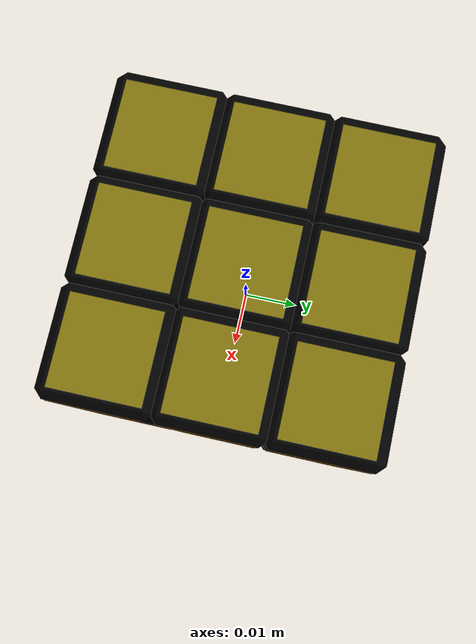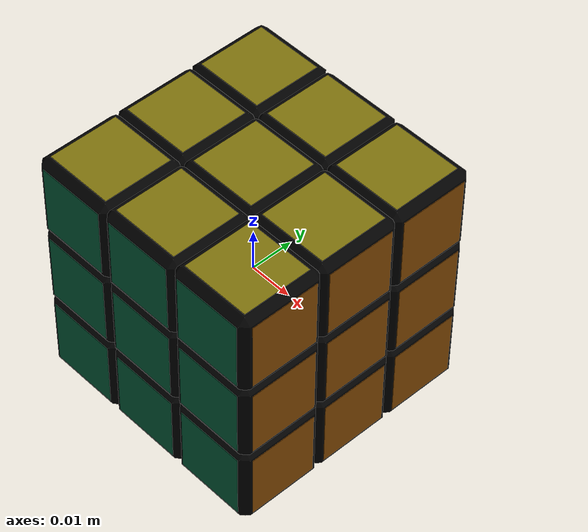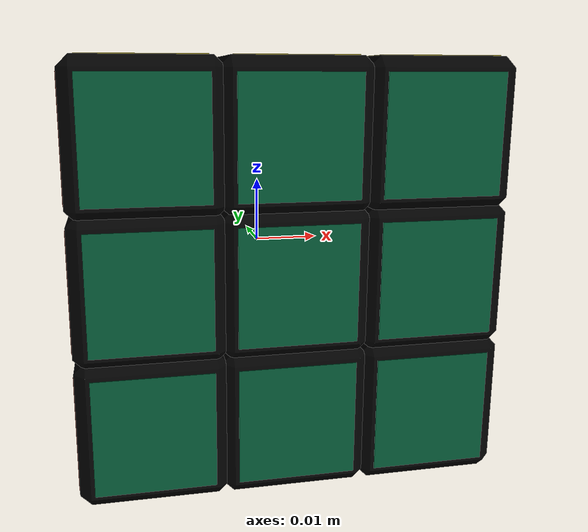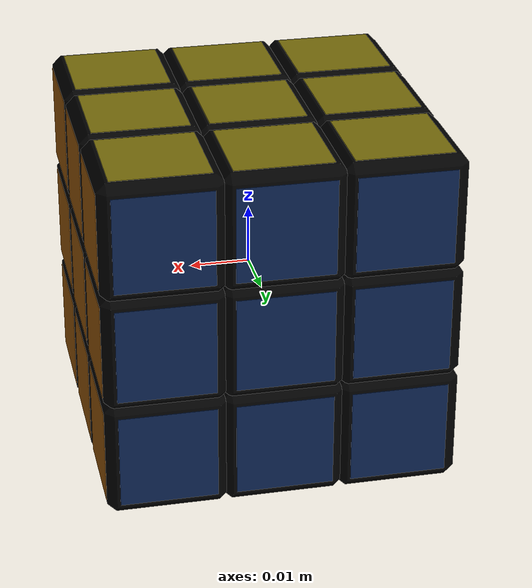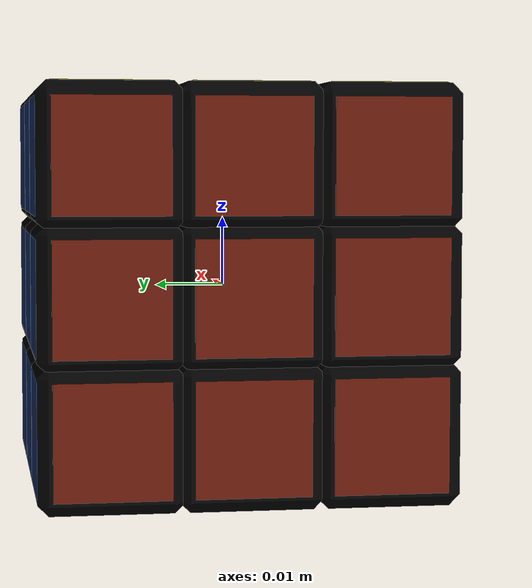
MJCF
<mujoco>
    <default>
        <default class="cube">
            <!-- ===== Defaults for small cubelet joints ===== -->

            <!-- ===== Defaults for the cubelet/driver hinge joints ==== -->
            <!-- Original joint damping/friction very likely to be too strong as we just have many more joints  -->
            <!-- Setting similar to the original bur probably still to strong:  -->

            <joint damping='0.0005' armature='0.0001' frictionloss="0.0005"/>

            <!-- ===== Defaults for small cubelet geoms ===== -->
            <!-- Original geom friction settings -->
            <!-- Current settings, making a friction closer to the half of original frictions -->
            <geom condim="6" density="521" friction="0.2 0.0025 0.0005"/>
        </default>

        <default class="cubemain">
            <joint damping='0.0' armature='0.0' frictionloss="0"/>
        </default>

        <default class="slide">
            <!-- These joints need "strong" armature to make high stiffness stable -->
            <joint stiffness="500.0" springref="0" armature="0.01" ref="0" damping="0.005" frictionloss="0.005" limited="true" range="-0.001 0.0002"/>
        </default>

        <default class="cubelet">
            <geom type="mesh" mesh="rounded_cube" material="cubelet_material" size="0.01 0.01 0.01" rgba="0 0 0 1" />
        </default>

        <default class="sticker">
            <geom type="box" conaffinity="0" contype="0" />
        </default>
    </default>

    <!-- Asset part -->
    <asset>
        <material name="cubelet_material" specular="1" shininess=".3" rgba="0 0 0 1" />
        <mesh name="rounded_cube" file="rounded_cubelet.stl" />
        <!-- sticker -->
        <material name="sticker_R" specular=".3" shininess="0.3" rgba="0.3843137254901961 0.09411764705882353 0.03529411764705882 1" />
        <material name="sticker_O" specular=".3" shininess="0.3" rgba="0.5137254901960784 0.2823529411764706 0.01568627450980392 1" />
        <material name="sticker_Y" specular=".3" shininess="0.3" rgba="0.5019607843137255 0.4549019607843137 0.050980392156862744 1" />
        <material name="sticker_W" specular=".3" shininess="0.3" rgba="0.596078431372549 0.6196078431372549 0.5607843137254902 1" />
        <material name="sticker_G" specular=".3" shininess="0.3" rgba="0.00784313725490196 0.3137254901960784 0.19215686274509805 1" />
        <material name="sticker_B" specular=".3" shininess="0.3" rgba="0.043137254901960784 0.13333333333333333 0.30980392156862746 1" />
    </asset>

    <worldbody>
        <body name="middle" childclass="cube" pos="0 0 0">
            <joint name="cube:tx"  class="cubemain" type="slide" axis="1 0 0" limited="false"/>
            <joint name="cube:ty"  class="cubemain" type="slide" axis="0 1 0" limited="false"/>
            <joint name="cube:tz"  class="cubemain" type="slide" axis="0 0 1" limited="false"/>
            <joint name="cube:rot" class="cubemain" type="ball" limited="false"/>

            <site name="center" pos="0 0 0" rgba="1 0 0 1" size="0.01 0.01 0.01" />
            <geom  name="center_sphere" pos="0.00 0.00 0.00" type="sphere" size="0.01 0.01 0.01" rgba="0.5 0.5 0.5 1.0"/>

            <!-- 6 cubelets adjacent to center -->

            <body name="body:neg_x">
                <body name="cubelet:neg_x" pos="-0.01905 0 0">
                    <!-- Red -->
                    <geom name="cubelet:neg_x" class="cubelet" />
                    <geom name="sticker:neg_x" class="sticker" material="sticker_R" size="0.0001 0.008 0.008" pos="-0.01 0.0 0.0"  />
                </body>

                <joint name="cubelet:driver:neg_x" type="hinge" pos="0 0 0" axis="1 0 0"/>
            </body>

            <body name="body:pos_x">
                <body name="cubelet:pos_x" pos="0.01905 0.00 0.00">
                    <!-- Orange -->
                    <geom name="cubelet:pos_x" class="cubelet" />
                    <geom name="sticker:pos_x" class="sticker" material="sticker_O" size="0.0001 0.008 0.008" pos="0.01 0.0 0.0" />
                </body>

                <joint name="cubelet:driver:pos_x" type="hinge" pos="0 0 0" axis="1 0 0"/>
            </body>

            <body name="body:neg_y">
                <body name="cubelet:neg_y" pos="0.00 -0.01905 0.00">
                    <!-- Green -->
                    <geom name="cubelet:neg_y" class="cubelet" />
                    <geom name="sticker:neg_y" class="sticker" material="sticker_G" size="0.008 0.0001 0.008" pos="0.0 -0.01 0.0" />
                </body>
                <joint name="cubelet:driver:neg_y" type="hinge" pos="0 0 0" axis="0 1 0"/>
            </body>

            <body name="body:pos_y">
                    <!-- Blue -->
                <body name="cubelet:pos_y" pos="0.00 0.01905 0.00">
                    <geom name="cubelet:pos_y" class="cubelet" />
                    <geom name="sticker:pos_y" class="sticker" material="sticker_B" size="0.008 0.0001 0.008" pos="0.0 0.01 0.0" />
                </body>

                <joint name="cubelet:driver:pos_y" type="hinge" pos="0 0 0" axis="0 1 0"/>
            </body>

            <body name="body:neg_z">
                <body name="cubelet:neg_z" pos="0.0 0.0 -0.01905">
                    <!-- White -->
                    <geom name="cubelet:neg_z" class="cubelet" />
                    <geom name="sticker:neg_z" class="sticker" material="sticker_W" size="0.008 0.008 0.0001" pos="0.0 0.0 -0.01" />
                </body>

                <joint name="cubelet:driver:neg_z" type="hinge" pos="0 0 0" axis="0 0 1"/>
            </body>

            <body name="body:pos_z">
                <body name="cubelet:pos_z" pos="0.00 0.00 0.01905">
                    <!-- Yellow -->
                    <geom name="cubelet:pos_z" class="cubelet" />
                    <geom name="sticker:pos_z" class="sticker" material="sticker_Y" size="0.008 0.008 0.0001" pos="0.0 0.0 0.01" />
                </body>

                <joint name="cubelet:driver:pos_z" type="hinge" pos="0 0 0" axis="0 0 1"/>
            </body>

            <!-- 20 "moveable" cubelets -->
            <body name="body:neg_x_pos_y">
                <body name="cubelet:neg_x_pos_y" pos="-0.01905 0.01905 0.0">
                    <!-- Red/Blue -->
                    <geom name="cubelet:neg_x_pos_y" class="cubelet" />
                    <geom name="sticker:neg_x_pos_y_R" class="sticker" material="sticker_R" size="0.0001 0.008 0.008" pos="-0.01 0.0 0.0" />
                    <geom name="sticker:neg_x_pos_y_B" class="sticker" material="sticker_B" size="0.008 0.0001 0.008" pos="0.0 0.01 0.0" />
                </body>

                <joint name="cubelet:rotx:neg_x_pos_y"   type="hinge" pos="0 0 0" axis="1 0 0"/>
                <joint name="cubelet:roty:neg_x_pos_y"   type="hinge" pos="0 0 0" axis="0 1 0"/>
                <joint name="cubelet:rotz:neg_x_pos_y"   type="hinge" pos="0 0 0" axis="0 0 1"/>
                <joint name="cubelet:spring:neg_x_pos_y" type="slide" pos="0 0 0" axis="-1 1 0" class="slide"/>
            </body>

            <body name="body:neg_x_pos_y_pos_z">
                <!-- Red/Blue/Yellow -->
                <body name="cubelet:neg_x_pos_y_pos_z"  pos="-0.01905 0.01905 0.01905">
                    <geom name="cubelet:neg_x_pos_y_pos_z" class="cubelet" />
                    <geom name="sticker:neg_x_pos_y_pos_z_R" class="sticker" material="sticker_R" size="0.0001 0.008 0.008" pos="-0.01 0.0 0.0" />
                    <geom name="sticker:neg_x_pos_y_pos_z_B" class="sticker" material="sticker_B" size="0.008 0.0001 0.008" pos="0.0 0.01 0.0" />
                    <geom name="sticker:neg_x_pos_y_pos_z_Y" class="sticker" material="sticker_Y" size="0.008 0.008 0.0001" pos="0.0 0.0 0.01" />
                </body>
                <joint name="cubelet:rotx:neg_x_pos_y_pos_z"   type="hinge" pos="0 0 0" axis="1 0 0"/>
                <joint name="cubelet:roty:neg_x_pos_y_pos_z"   type="hinge" pos="0 0 0" axis="0 1 0"/>
                <joint name="cubelet:rotz:neg_x_pos_y_pos_z"   type="hinge" pos="0 0 0" axis="0 0 1"/>
                <joint name="cubelet:spring:neg_x_pos_y_pos_z" type="slide" pos="0 0 0" axis="-1 1 1" class="slide"/>
            </body>

            <body name="body:neg_x_pos_y_neg_z">
                <!-- Red/Blue/White -->
                <body name="cubelet:neg_x_pos_y_neg_z" pos="-0.01905 0.01905 -0.01905">
                    <geom name="cubelet:neg_x_pos_y_neg_z" class="cubelet" />
                    <geom name="sticker:neg_x_pos_y_neg_z_R" class="sticker" material="sticker_R" size="0.0001 0.008 0.008" pos="-0.01 0.0 0.0" />
                    <geom name="sticker:neg_x_pos_y_neg_z_B" class="sticker" material="sticker_B" size="0.008 0.0001 0.008" pos="0.0 0.01 0.0" />
                    <geom name="sticker:neg_x_pos_y_neg_z_W" class="sticker" material="sticker_W" size="0.008 0.008 0.0001" pos="0.0 0.0 -0.01" />
                </body>

                <joint name="cubelet:rotx:neg_x_pos_y_neg_z"   type="hinge" pos="0 0 0" axis="1 0 0"/>
                <joint name="cubelet:roty:neg_x_pos_y_neg_z"   type="hinge" pos="0 0 0" axis="0 1 0"/>
                <joint name="cubelet:rotz:neg_x_pos_y_neg_z"   type="hinge" pos="0 0 0" axis="0 0 1"/>
                <joint name="cubelet:spring:neg_x_pos_y_neg_z" type="slide" pos="0 0 0" axis="-1 1 -1" class="slide"/>
            </body>

            <body name="body:neg_x_neg_y_pos_z" >
                <!-- Red/Green/Yellow -->
                <body name="cubelet:neg_x_neg_y_pos_z" pos="-0.01905 -0.01905 0.01905">
                    <geom name="cubelet:neg_x_neg_y_pos_z" class="cubelet" />
                    <geom name="sticker:neg_x_neg_y_pos_z_R" class="sticker" material="sticker_R" size="0.0001 0.008 0.008" pos="-0.01 0.0 0.0" />
                    <geom name="sticker:neg_x_neg_y_pos_z_G" class="sticker" material="sticker_G" size="0.008 0.0001 0.008" pos="0.0 -0.01 0.0" />
                    <geom name="sticker:neg_x_neg_y_pos_z_Y" class="sticker" material="sticker_Y" size="0.008 0.008 0.0001" pos="0.0 0.0 0.01" />
                </body>

                <joint name="cubelet:rotx:neg_x_neg_y_pos_z"   type="hinge" pos="0 0 0" axis="1 0 0"/>
                <joint name="cubelet:roty:neg_x_neg_y_pos_z"   type="hinge" pos="0 0 0" axis="0 1 0"/>
                <joint name="cubelet:rotz:neg_x_neg_y_pos_z"   type="hinge" pos="0 0 0" axis="0 0 1"/>
                <joint name="cubelet:spring:neg_x_neg_y_pos_z" type="slide" pos="0 0 0" axis="-1 -1 1" class="slide"/>
            </body>

            <body name="body:neg_x_neg_y_neg_z">
                <!-- Red/Green/White -->
                <body name="cubelet:neg_x_neg_y_neg_z" pos="-0.01905 -0.01905 -0.01905">
                    <geom name="cubelet:neg_x_neg_y_neg_z" class="cubelet"/>
                    <geom name="sticker:neg_x_neg_y_neg_z_R" class="sticker" material="sticker_R" size="0.0001 0.008 0.008" pos="-0.01 0.0 0.0" />
                    <geom name="sticker:neg_x_neg_y_neg_z_G" class="sticker" material="sticker_G" size="0.008 0.0001 0.008" pos="0.0 -0.01 0.0" />
                    <geom name="sticker:neg_x_neg_y_neg_z_W" class="sticker" material="sticker_W" size="0.008 0.008 0.0001" pos="0.0 0.0 -0.01" />
                </body>

                <joint name="cubelet:rotx:neg_x_neg_y_neg_z"   type="hinge" pos="0 0 0" axis="1 0 0"/>
                <joint name="cubelet:roty:neg_x_neg_y_neg_z"   type="hinge" pos="0 0 0" axis="0 1 0"/>
                <joint name="cubelet:rotz:neg_x_neg_y_neg_z"   type="hinge" pos="0 0 0" axis="0 0 1"/>
                <joint name="cubelet:spring:neg_x_neg_y_neg_z" type="slide" pos="0 0 0" axis="-1 -1 -1" class="slide"/>
            </body>

            <body name="body:neg_x_neg_z">
                <!-- Red/White -->
                <body name="cubelet:neg_x_neg_z" pos="-0.01905 0.0 -0.01905">
                    <geom name="cubelet:neg_x_neg_z" class="cubelet" />
                    <geom name="sticker:neg_x_neg_z_R" class="sticker" material="sticker_R" size="0.0001 0.008 0.008" pos="-0.01 0.0 0.0" />
                    <geom name="sticker:neg_x_neg_z_W" class="sticker" material="sticker_W" size="0.008 0.008 0.0001" pos="0.0 0.0 -0.01" />
                </body>

                <joint name="cubelet:rotx:neg_x_neg_z"   type="hinge" pos="0 0 0" axis="1 0 0"/>
                <joint name="cubelet:roty:neg_x_neg_z"   type="hinge" pos="0 0 0" axis="0 1 0"/>
                <joint name="cubelet:rotz:neg_x_neg_z"   type="hinge" pos="0 0 0" axis="0 0 1"/>
                <joint name="cubelet:spring:neg_x_neg_z" type="slide" pos="0 0 0" axis="-1 0 -1" class="slide"/>
            </body>

            <body name="body:neg_x_neg_y">
                <!-- Red/Green -->
                <body name="cubelet:neg_x_neg_y" pos="-0.01905 -0.01905 0.0">
                    <geom name="cubelet:neg_x_neg_y" class="cubelet" />
                    <geom name="sticker:neg_x_neg_y_R" class="sticker" material="sticker_R" size="0.0001 0.008 0.008" pos="-0.01 0.0 0.0" />
                    <geom name="sticker:neg_x_neg_y_G" class="sticker" material="sticker_G" size="0.008 0.0001 0.008" pos="0.0 -0.01 0.0" />
                </body>

                <joint name="cubelet:rotx:neg_x_neg_y"   type="hinge" pos="0 0 0" axis="1 0 0"/>
                <joint name="cubelet:roty:neg_x_neg_y"   type="hinge" pos="0 0 0" axis="0 1 0"/>
                <joint name="cubelet:rotz:neg_x_neg_y"   type="hinge" pos="0 0 0" axis="0 0 1"/>
                <joint name="cubelet:spring:neg_x_neg_y" type="slide" pos="0 0 0" axis="-1 -1 0" class="slide"/>
            </body>

            <body name="body:neg_x_pos_z">
                <!-- Red/Yellow -->
                <body name="cubelet:neg_x_pos_z" pos="-0.01905 0.0 0.01905">
                    <geom name="cubelet:neg_x_pos_z" class="cubelet" />
                    <geom name="sticker:neg_x_pos_z_R" class="sticker" material="sticker_R" size="0.0001 0.008 0.008" pos="-0.01 0.0 0.0" />
                    <geom name="sticker:neg_x_pos_z_Y" class="sticker" material="sticker_Y" size="0.008 0.008 0.0001" pos="0.0 0.0 0.01" />
                </body>

                <joint name="cubelet:rotx:neg_x_pos_z"   type="hinge" pos="0 0 0" axis="1 0 0"/>
                <joint name="cubelet:roty:neg_x_pos_z"   type="hinge" pos="0 0 0" axis="0 1 0"/>
                <joint name="cubelet:rotz:neg_x_pos_z"   type="hinge" pos="0 0 0" axis="0 0 1"/>
                <joint name="cubelet:spring:neg_x_pos_z" type="slide" pos="0 0 0" axis="-1 0 1" class="slide"/>
            </body>

            <body name="body:pos_x_neg_z">
                <!-- Orange/White -->
                <body name="cubelet:pos_x_neg_z" pos="0.01905 0.0 -0.01905">
                    <geom name="cubelet:pos_x_neg_z" class="cubelet" />
                    <geom name="sticker:pos_x_neg_z_O" class="sticker" material="sticker_O" size="0.0001 0.008 0.008" pos="0.01 0.0 0.0" />
                    <geom name="sticker:pos_x_neg_z_W" class="sticker" material="sticker_W" size="0.008 0.008 0.0001" pos="0.0 0.0 -0.01" />
                </body>

                <joint name="cubelet:rotx:pos_x_neg_z"   type="hinge" pos="0 0 0" axis="1 0 0"/>
                <joint name="cubelet:roty:pos_x_neg_z"   type="hinge" pos="0 0 0" axis="0 1 0"/>
                <joint name="cubelet:rotz:pos_x_neg_z"   type="hinge" pos="0 0 0" axis="0 0 1"/>
                <joint name="cubelet:spring:pos_x_neg_z" type="slide" pos="0 0 0" axis="1 0 -1" class="slide"/>
            </body>

            <body name="body:pos_x_pos_z">
                <!-- Orange/Yellow -->
                <body name="cubelet:pos_x_pos_z" pos="0.01905 0.0 0.01905">
                    <geom name="cubelet:pos_x_pos_z" class="cubelet" />
                    <geom name="sticker:pos_x_pos_z_O" class="sticker" material="sticker_O" size="0.0001 0.008 0.008" pos="0.01 0.0 0.0" />
                    <geom name="sticker:pos_x_pos_z_Y" class="sticker" material="sticker_Y" size="0.008 0.008 0.0001" pos="0.0 0.0 0.01" />
                </body>

                <joint name="cubelet:rotx:pos_x_pos_z"   type="hinge" pos="0 0 0" axis="1 0 0"/>
                <joint name="cubelet:roty:pos_x_pos_z"   type="hinge" pos="0 0 0" axis="0 1 0"/>
                <joint name="cubelet:rotz:pos_x_pos_z"   type="hinge" pos="0 0 0" axis="0 0 1"/>
                <joint name="cubelet:spring:pos_x_pos_z" type="slide" pos="0 0 0" axis="1 0 1" class="slide"/>
            </body>

            <body name="body:pos_x_pos_y">
                <!-- Orange/Blue -->
                <body name="cubelet:pos_x_pos_y" pos="0.01905 0.01905 0.0">
                    <geom name="cubelet:pos_x_pos_y" class="cubelet" />
                    <geom name="sticker:pos_x_pos_y_O" class="sticker" material="sticker_O" size="0.0001 0.008 0.008" pos="0.01 0.0 0.0" />
                    <geom name="sticker:pos_x_pos_y_B" class="sticker" material="sticker_B" size="0.008 0.0001 0.008" pos="0.0 0.01 0.0" />
                </body>

                <joint name="cubelet:rotx:pos_x_pos_y"   type="hinge" pos="0 0 0" axis="1 0 0"/>
                <joint name="cubelet:roty:pos_x_pos_y"   type="hinge" pos="0 0 0" axis="0 1 0"/>
                <joint name="cubelet:rotz:pos_x_pos_y"   type="hinge" pos="0 0 0" axis="0 0 1"/>
                <joint name="cubelet:spring:pos_x_pos_y" type="slide" pos="0 0 0" axis="1 1 0" class="slide"/>
            </body>

            <body name="body:pos_x_neg_y">
                <!-- Orange/Green -->
                <body name="cubelet:pos_x_neg_y" pos="0.01905 -0.01905 0.0" >
                    <geom name="cubelet:pos_x_neg_y" class="cubelet" />
                    <geom name="sticker:pos_x_neg_y_O" class="sticker" material="sticker_O" size="0.0001 0.008 0.008" pos="0.01 0.0 0.0" />
                    <geom name="sticker:pos_x_neg_y_G" class="sticker" material="sticker_G" size="0.008 0.0001 0.008" pos="0.0 -0.01 0.0" />
                </body>

                <joint name="cubelet:rotx:pos_x_neg_y"   type="hinge" pos="0 0 0" axis="1 0 0"/>
                <joint name="cubelet:roty:pos_x_neg_y"   type="hinge" pos="0 0 0" axis="0 1 0"/>
                <joint name="cubelet:rotz:pos_x_neg_y"   type="hinge" pos="0 0 0" axis="0 0 1"/>
                <joint name="cubelet:spring:pos_x_neg_y" type="slide" pos="0 0 0" axis="1 -1 0" class="slide"/>
            </body>

            <body name="body:pos_x_neg_y_neg_z">
                <!-- Orange/Green/White -->
                <body name="cubelet:pos_x_neg_y_neg_z" pos="0.01905 -0.01905 -0.01905">
                    <geom name="cubelet:pos_x_neg_y_neg_z" class="cubelet" />
                    <geom name="sticker:pos_x_neg_y_neg_z_O" class="sticker" material="sticker_O" size="0.0001 0.008 0.008" pos="0.01 0.0 0.0" />
                    <geom name="sticker:pos_x_neg_y_neg_z_G" class="sticker" material="sticker_G" size="0.008 0.0001 0.008" pos="0.0 -0.01 0.0" />
                    <geom name="sticker:pos_x_neg_y_neg_z_W" class="sticker" material="sticker_W" size="0.008 0.008 0.0001" pos="0.0 0.0 -0.01" />
                </body>

                <joint name="cubelet:rotx:pos_x_neg_y_neg_z"   type="hinge" pos="0 0 0" axis="1 0 0"/>
                <joint name="cubelet:roty:pos_x_neg_y_neg_z"   type="hinge" pos="0 0 0" axis="0 1 0"/>
                <joint name="cubelet:rotz:pos_x_neg_y_neg_z"   type="hinge" pos="0 0 0" axis="0 0 1"/>
                <joint name="cubelet:spring:pos_x_neg_y_neg_z" type="slide" pos="0 0 0" axis="1 -1 -1" class="slide"/>
            </body>

            <body name="body:pos_x_neg_y_pos_z">
                <!-- Orange/Green/Yellow -->
                <body name="cubelet:pos_x_neg_y_pos_z" pos="0.01905 -0.01905 0.01905">
                    <geom name="cubelet:pos_x_neg_y_pos_z" class="cubelet" />
                    <geom name="sticker:pos_x_neg_y_pos_z_O" class="sticker" material="sticker_O" size="0.0001 0.008 0.008" pos="0.01 0.0 0.0" />
                    <geom name="sticker:pos_x_neg_y_pos_z_G" class="sticker" material="sticker_G" size="0.008 0.0001 0.008" pos="0.0 -0.01 0.0" />
                    <geom name="sticker:pos_x_neg_y_pos_z_Y" class="sticker" material="sticker_Y" size="0.008 0.008 0.0001" pos="0.0 0.0 0.01" />
                </body>

                <joint name="cubelet:rotx:pos_x_neg_y_pos_z"   type="hinge" pos="0 0 0" axis="1 0 0"/>
                <joint name="cubelet:roty:pos_x_neg_y_pos_z"   type="hinge" pos="0 0 0" axis="0 1 0"/>
                <joint name="cubelet:rotz:pos_x_neg_y_pos_z"   type="hinge" pos="0 0 0" axis="0 0 1"/>
                <joint name="cubelet:spring:pos_x_neg_y_pos_z" type="slide" pos="0 0 0" axis="1 -1 1" class="slide"/>
            </body>

            <body name="body:pos_x_pos_y_neg_z">
                <!-- Orange/Blue/White -->
                <body name="cubelet:pos_x_pos_y_neg_z" pos="0.01905 0.01905 -0.01905">
                    <geom name="cubelet:pos_x_pos_y_neg_z" class="cubelet" />
                    <geom name="sticker:pos_x_pos_y_neg_z_O" class="sticker" material="sticker_O" size="0.0001 0.008 0.008" pos="0.01 0.0 0.0" />
                    <geom name="sticker:pos_x_pos_y_neg_z_B" class="sticker" material="sticker_B" size="0.008 0.0001 0.008" pos="0.0 0.01 0.0" />
                    <geom name="sticker:pos_x_pos_y_neg_z_W" class="sticker" material="sticker_W" size="0.008 0.008 0.0001" pos="0.0 0.0 -0.01" />
                </body>

                <joint name="cubelet:rotx:pos_x_pos_y_neg_z"   type="hinge" pos="0 0 0" axis="1 0 0"/>
                <joint name="cubelet:roty:pos_x_pos_y_neg_z"   type="hinge" pos="0 0 0" axis="0 1 0"/>
                <joint name="cubelet:rotz:pos_x_pos_y_neg_z"   type="hinge" pos="0 0 0" axis="0 0 1"/>
                <joint name="cubelet:spring:pos_x_pos_y_neg_z" type="slide" pos="0 0 0" axis="1 1 -1" class="slide"/>
            </body>

            <body name="body:pos_x_pos_y_pos_z">
                <!-- Orange/Blue/Yellow -->
                <body name="cubelet:pos_x_pos_y_pos_z" pos="0.01905 0.01905 0.01905">
                    <geom name="cubelet:pos_x_pos_y_pos_z" class="cubelet" />
                    <geom name="sticker:pos_x_pos_y_pos_z_O" class="sticker" material="sticker_O" size="0.0001 0.008 0.008" pos="0.01 0.0 0.0" />
                    <geom name="sticker:pos_x_pos_y_pos_z_B" class="sticker" material="sticker_B" size="0.008 0.0001 0.008" pos="0.0 0.01 0.0" />
                    <geom name="sticker:pos_x_pos_y_pos_z_Y" class="sticker" material="sticker_Y" size="0.008 0.008 0.0001" pos="0.0 0.0 0.01" />
                </body>

                <joint name="cubelet:rotx:pos_x_pos_y_pos_z"   type="hinge" pos="0 0 0" axis="1 0 0"/>
                <joint name="cubelet:roty:pos_x_pos_y_pos_z"   type="hinge" pos="0 0 0" axis="0 1 0"/>
                <joint name="cubelet:rotz:pos_x_pos_y_pos_z"   type="hinge" pos="0 0 0" axis="0 0 1"/>
                <joint name="cubelet:spring:pos_x_pos_y_pos_z" type="slide" pos="0 0 0" axis="1 1 1" class="slide"/>
            </body>

            <body name="body:neg_y_neg_z">
                <!-- Green/White -->
                <body name="cubelet:neg_y_neg_z" pos="0.0 -0.01905 -0.01905">
                    <geom name="cubelet:neg_y_neg_z" class="cubelet" />
                    <geom name="sticker:neg_y_neg_z_G" class="sticker" material="sticker_G" size="0.008 0.0001 0.008" pos="0.0 -0.01 0.0" />
                    <geom name="sticker:neg_y_neg_z_W" class="sticker" material="sticker_W" size="0.008 0.008 0.0001" pos="0.0 0.0 -0.01" />
                </body>

                <joint name="cubelet:rotx:neg_y_neg_z"   type="hinge" pos="0 0 0" axis="1 0 0"/>
                <joint name="cubelet:roty:neg_y_neg_z"   type="hinge" pos="0 0 0" axis="0 1 0"/>
                <joint name="cubelet:rotz:neg_y_neg_z"   type="hinge" pos="0 0 0" axis="0 0 1"/>
                <joint name="cubelet:spring:neg_y_neg_z" type="slide" pos="0 0 0" axis="0 -1 -1" class="slide"/>
            </body>

            <body name="body:neg_y_pos_z">
                <!-- Green/Yellow -->
                <body name="cubelet:neg_y_pos_z" pos="0.0 -0.01905 0.01905">
                    <geom name="cubelet:neg_y_pos_z" class="cubelet" />
                    <geom name="sticker:neg_y_pos_z_G" class="sticker" material="sticker_G" size="0.008 0.0001 0.008" pos="0.0 -0.01 0.0" />
                    <geom name="sticker:neg_y_pos_z_Y" class="sticker" material="sticker_Y" size="0.008 0.008 0.0001" pos="0.0 0.0 0.01" />
                </body>

                <joint name="cubelet:rotx:neg_y_pos_z"   type="hinge" pos="0 0 0" axis="1 0 0"/>
                <joint name="cubelet:roty:neg_y_pos_z"   type="hinge" pos="0 0 0" axis="0 1 0"/>
                <joint name="cubelet:rotz:neg_y_pos_z"   type="hinge" pos="0 0 0" axis="0 0 1"/>
                <joint name="cubelet:spring:neg_y_pos_z" type="slide" pos="0 0 0" axis="0 -1 1" class="slide"/>
            </body>

            <body name="body:pos_y_neg_z">
                <!-- Blue/White -->
                <body name="cubelet:pos_y_neg_z" pos="0.0 0.01905 -0.01905">
                    <geom name="cubelet:pos_y_neg_z" class="cubelet" />
                    <geom name="sticker:pos_y_neg_z_B" class="sticker" material="sticker_B" size="0.008 0.0001 0.008" pos="0.0 0.01 0.0" />
                    <geom name="sticker:pos_y_neg_z_W" class="sticker" material="sticker_W" size="0.008 0.008 0.0001" pos="0.0 0.0 -0.01" />
                </body>

                <joint name="cubelet:rotx:pos_y_neg_z"   type="hinge" pos="0 0 0" axis="1 0 0"/>
                <joint name="cubelet:roty:pos_y_neg_z"   type="hinge" pos="0 0 0" axis="0 1 0"/>
                <joint name="cubelet:rotz:pos_y_neg_z"   type="hinge" pos="0 0 0" axis="0 0 1"/>
                <joint name="cubelet:spring:pos_y_neg_z" type="slide" pos="0 0 0" axis="0 1 -1" class="slide"/>
            </body>

            <body name="body:pos_y_pos_z">
                <!-- Blue/Yellow -->
                <body name="cubelet:pos_y_pos_z" pos="0.0 0.01905 0.01905">
                    <geom name="cubelet:pos_y_pos_z" class="cubelet" />
                    <geom name="sticker:pos_y_pos_z_B" class="sticker" material="sticker_B" size="0.008 0.0001 0.008" pos="0.0 0.01 0.0" />
                    <geom name="sticker:pos_y_pos_z_Y" class="sticker" material="sticker_Y" size="0.008 0.008 0.0001" pos="0.0 0.0 0.01" />
                </body>

                <joint name="cubelet:rotx:pos_y_pos_z"   type="hinge" pos="0 0 0" axis="1 0 0"/>
                <joint name="cubelet:roty:pos_y_pos_z"   type="hinge" pos="0 0 0" axis="0 1 0"/>
                <joint name="cubelet:rotz:pos_y_pos_z"   type="hinge" pos="0 0 0" axis="0 0 1"/>
                <joint name="cubelet:spring:pos_y_pos_z" type="slide" pos="0 0 0" axis="0 1 1" class="slide"/>
            </body>
        </body>
    </worldbody>
</mujoco>
